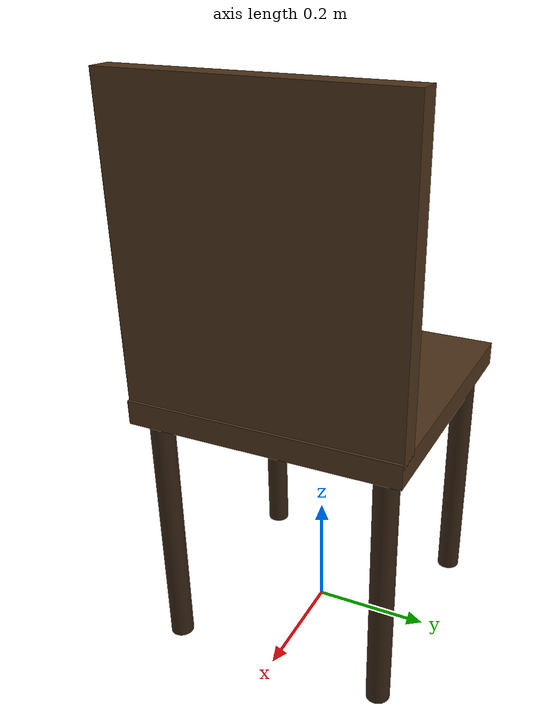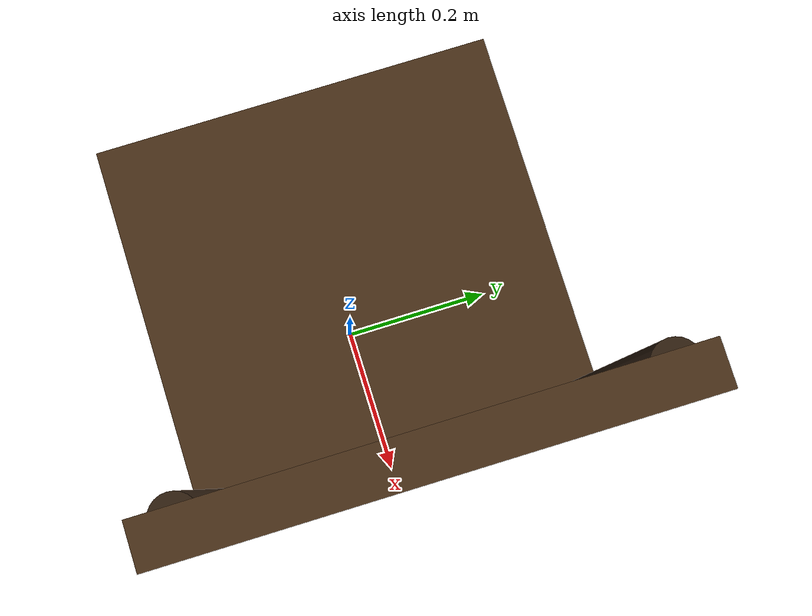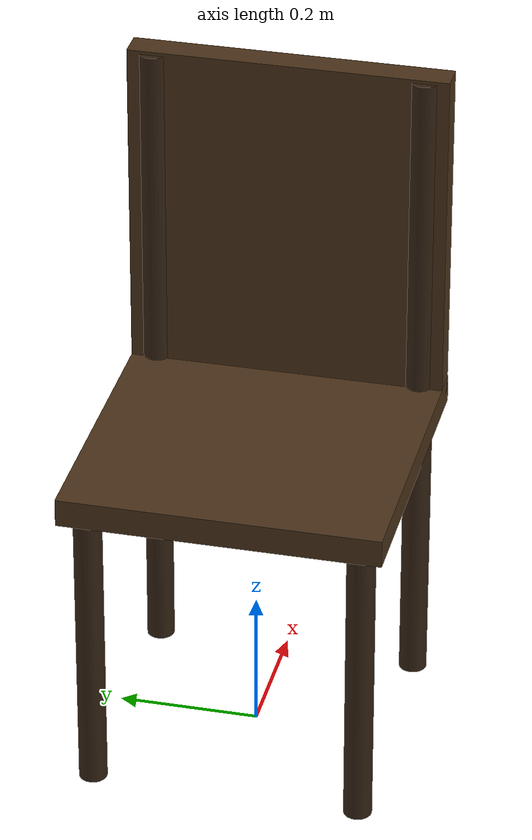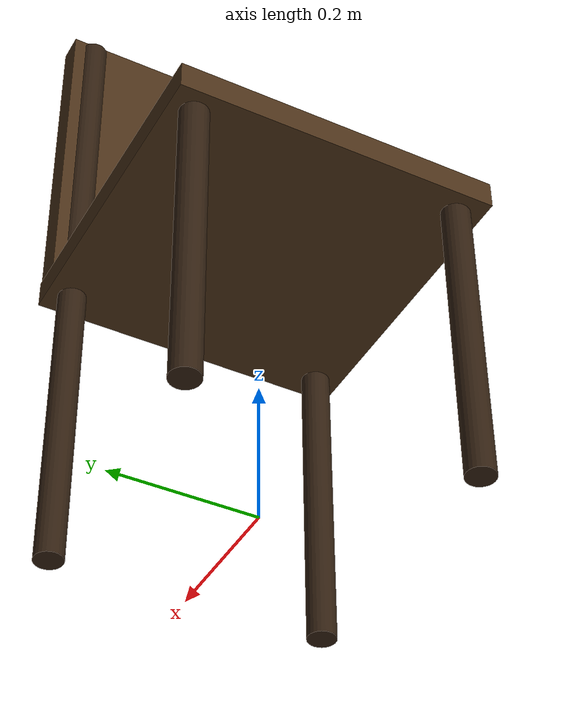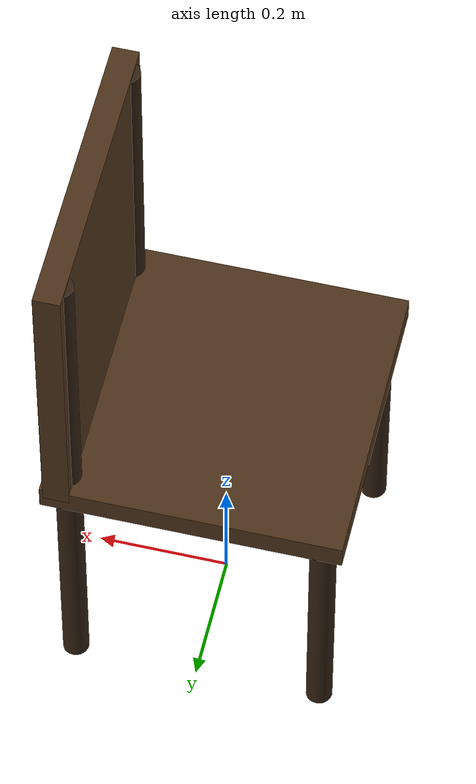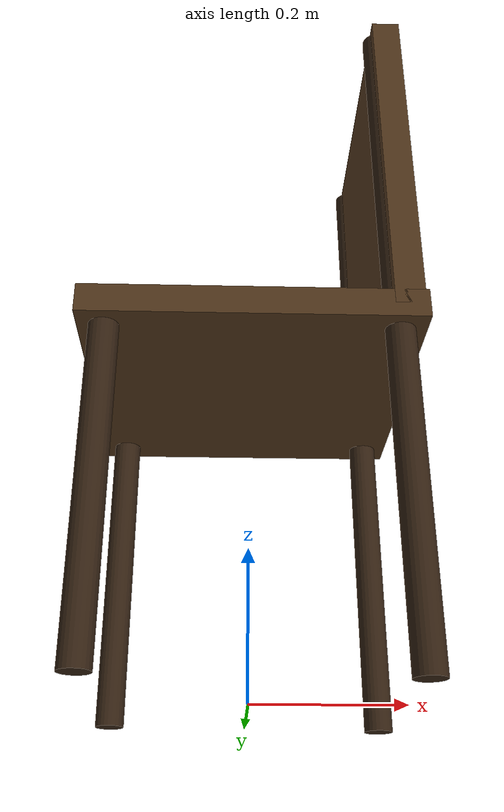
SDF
<?xml version="1.0" ?>
<sdf version="1.6">
  <model name="cadeira">
    <static>true</static>

    <!-- Assento -->
    <link name="assento">
      <pose>0 0 0.45 0 0 0</pose>

      <visual name="visual_assento">
        <geometry>
          <box>
            <size>0.45 0.45 0.04</size>
          </box>
        </geometry>
        <material>
          <ambient>0.3 0.2 0.1 1</ambient>
          <diffuse>0.3 0.2 0.1 1</diffuse>
          <specular>0.05 0.05 0.05 1</specular>
        </material>
      </visual>

      <collision name="colisao_assento">
        <geometry>
          <box>
            <size>0.45 0.45 0.04</size>
          </box>
        </geometry>
        <surface>
          <friction>
            <ode>
              <mu>0.9</mu>
              <mu2>0.9</mu2>
            </ode>
          </friction>
          <contact>
            <ode>
              <kp>1e6</kp>
              <kd>1.0</kd>
            </ode>
          </contact>
        </surface>
      </collision>

      <inertial>
        <mass>3.0</mass>
        <inertia>
          <ixx>0.051</ixx>
          <iyy>0.051</iyy>
          <izz>0.101</izz>
        </inertia>
      </inertial>
    </link>

    <!-- Encosto -->
    <link name="encosto">
      <pose>0.20 0 0.70 0 0 0</pose>

      <visual name="visual_encosto">
        <geometry>
          <box>
            <size>0.04 0.45 0.50</size>
          </box>
        </geometry>
        <material>
          <ambient>0.3 0.2 0.1 1</ambient>
          <diffuse>0.3 0.2 0.1 1</diffuse>
        </material>
      </visual>

      <collision name="colisao_encosto">
        <geometry>
          <box>
            <size>0.04 0.45 0.50</size>
          </box>
        </geometry>
        <surface>
          <friction>
            <ode>
              <mu>0.9</mu>
              <mu2>0.9</mu2>
            </ode>
          </friction>
        </surface>
      </collision>

      <inertial>
        <mass>2.0</mass>
        <inertia>
          <ixx>0.043</ixx>
          <iyy>0.003</iyy>
          <izz>0.043</izz>
        </inertia>
      </inertial>
    </link>

    <!-- Perna dianteira esquerda -->
    <link name="perna_DE">
      <pose>-0.19 -0.19 0.22 0 0 0</pose>

      <visual name="visual_perna_DE">
        <geometry>
          <cylinder>
            <radius>0.02</radius>
            <length>0.44</length>
          </cylinder>
        </geometry>
        <material>
          <ambient>0.2 0.13 0.07 1</ambient>
          <diffuse>0.2 0.13 0.07 1</diffuse>
        </material>
      </visual>

      <collision name="colisao_perna_DE">
        <geometry>
          <cylinder>
            <radius>0.02</radius>
            <length>0.44</length>
          </cylinder>
        </geometry>
      </collision>

      <inertial>
        <mass>0.6</mass>
        <inertia>
          <ixx>0.010</ixx>
          <iyy>0.010</iyy>
          <izz>0.0001</izz>
        </inertia>
      </inertial>
    </link>

    <!-- Perna dianteira direita -->
    <link name="perna_DD">
      <pose>-0.19 0.19 0.22 0 0 0</pose>

      <visual name="visual_perna_DD">
        <geometry>
          <cylinder>
            <radius>0.02</radius>
            <length>0.44</length>
          </cylinder>
        </geometry>
        <material>
          <ambient>0.2 0.13 0.07 1</ambient>
          <diffuse>0.2 0.13 0.07 1</diffuse>
        </material>
      </visual>

      <collision name="colisao_perna_DD">
        <geometry>
          <cylinder>
            <radius>0.02</radius>
            <length>0.44</length>
          </cylinder>
        </geometry>
      </collision>

      <inertial>
        <mass>0.6</mass>
        <inertia>
          <ixx>0.010</ixx>
          <iyy>0.010</iyy>
          <izz>0.0001</izz>
        </inertia>
      </inertial>
    </link>

    <!-- Perna traseira esquerda (estendida para suportar encosto) -->
    <link name="perna_TE">
      <pose>0.19 -0.19 0.47 0 0 0</pose>

      <visual name="visual_perna_TE">
        <geometry>
          <cylinder>
            <radius>0.02</radius>
            <length>0.95</length>
          </cylinder>
        </geometry>
        <material>
          <ambient>0.2 0.13 0.07 1</ambient>
          <diffuse>0.2 0.13 0.07 1</diffuse>
        </material>
      </visual>

      <collision name="colisao_perna_TE">
        <geometry>
          <cylinder>
            <radius>0.02</radius>
            <length>0.95</length>
          </cylinder>
        </geometry>
      </collision>

      <inertial>
        <mass>1.0</mass>
        <inertia>
          <ixx>0.075</ixx>
          <iyy>0.075</iyy>
          <izz>0.0002</izz>
        </inertia>
      </inertial>
    </link>

    <!-- Perna traseira direita (estendida para suportar encosto) -->
    <link name="perna_TD">
      <pose>0.19 0.19 0.47 0 0 0</pose>

      <visual name="visual_perna_TD">
        <geometry>
          <cylinder>
            <radius>0.02</radius>
            <length>0.95</length>
          </cylinder>
        </geometry>
        <material>
          <ambient>0.2 0.13 0.07 1</ambient>
          <diffuse>0.2 0.13 0.07 1</diffuse>
        </material>
      </visual>

      <collision name="colisao_perna_TD">
        <geometry>
          <cylinder>
            <radius>0.02</radius>
            <length>0.95</length>
          </cylinder>
        </geometry>
      </collision>

      <inertial>
        <mass>1.0</mass>
        <inertia>
          <ixx>0.075</ixx>
          <iyy>0.075</iyy>
          <izz>0.0002</izz>
        </inertia>
      </inertial>
    </link>

    <!-- Junções fixas -->
    <joint name="junta_encosto" type="fixed">
      <parent>assento</parent>
      <child>encosto</child>
    </joint>

    <joint name="junta_perna_DE" type="fixed">
      <parent>assento</parent>
      <child>perna_DE</child>
    </joint>

    <joint name="junta_perna_DD" type="fixed">
      <parent>assento</parent>
      <child>perna_DD</child>
    </joint>

    <joint name="junta_perna_TE" type="fixed">
      <parent>assento</parent>
      <child>perna_TE</child>
    </joint>

    <joint name="junta_perna_TD" type="fixed">
      <parent>assento</parent>
      <child>perna_TD</child>
    </joint>

  </model>
</sdf>
